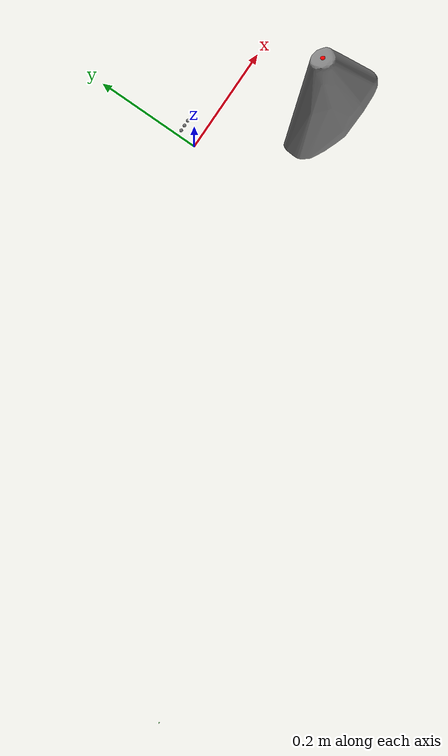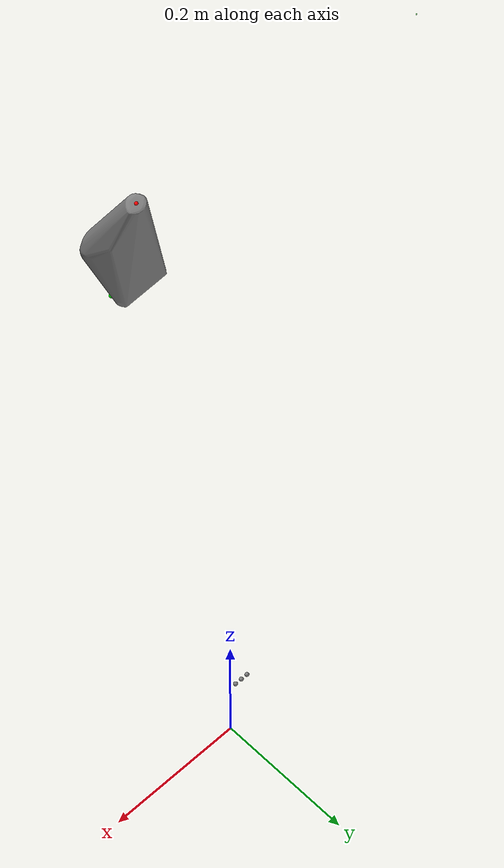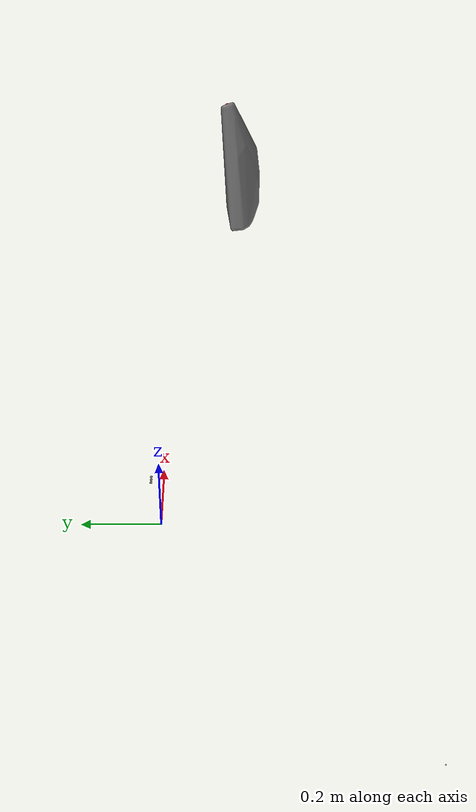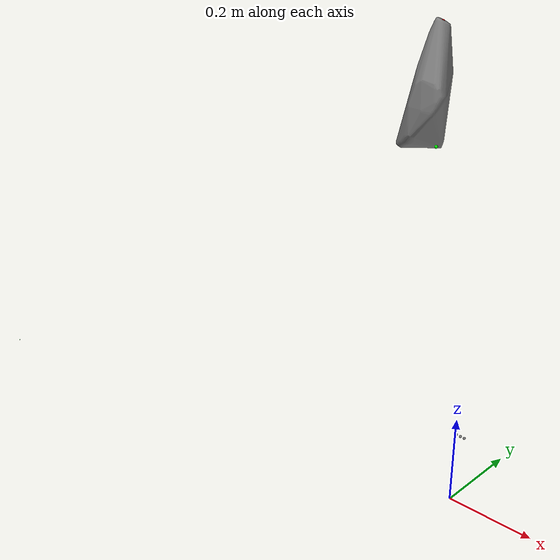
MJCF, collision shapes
<mujoco model="phantom">
  <compiler meshdir="meshes" />
  <asset>
    <mesh name="visual" file="AAA001/visual.stl" />
    <mesh name="hull_0" file="AAA001/hull_0.stl" />
  </asset>
  <worldbody>
    <body name="phantom" mocap="false">
      <inertial pos="0 0 0" mass="1000" diaginertia="1000 1000 1000" />
      <geom name="visual" type="mesh" mesh="visual" contype="0" conaffinity="0" group="2" />
      <geom type="mesh" mesh="hull_0" />

      <!-- Centerline-based sites -->
      <site name="start" pos="0.024084 -0.179627 0.848294" size="0.003" rgba="0 1 0 1" />
      <site name="start_direction" pos="-0.821293 -0.495560 0.282663" size="0.001" rgba="0 1 0 0.5" />
      <site name="goal" pos="0.003177 -0.154139 1.053505" size="0.003" rgba="1 0 0 1" />
      <site name="bca" pos="0.0 0.02 0.15" size="0.003" />
      <site name="lcca" pos="-0.01 0.02 0.15" size="0.003" />
      <site name="lsa" pos="0.01 0.02 0.15" size="0.003" />
    </body>
  </worldbody>
</mujoco>
